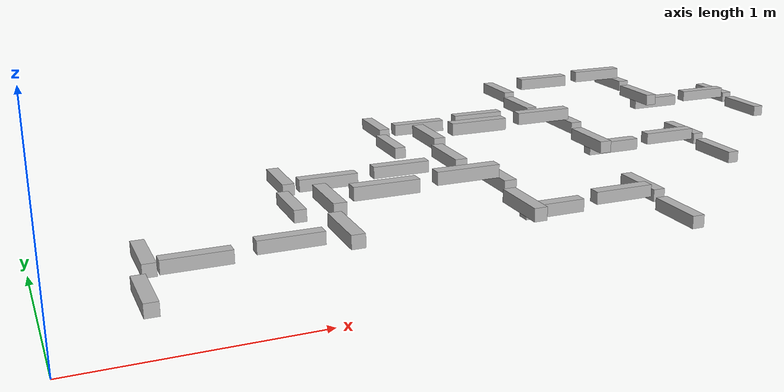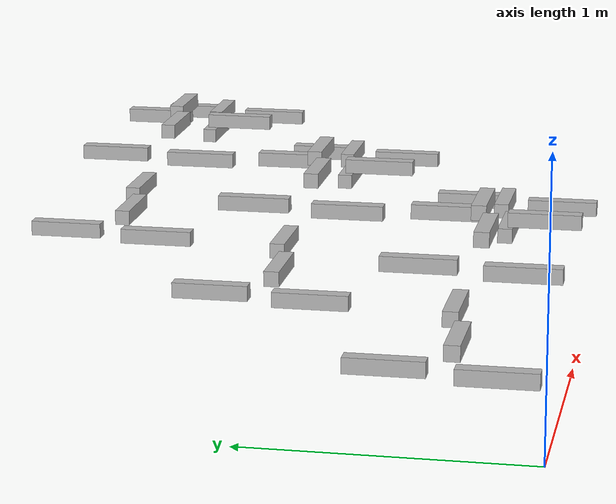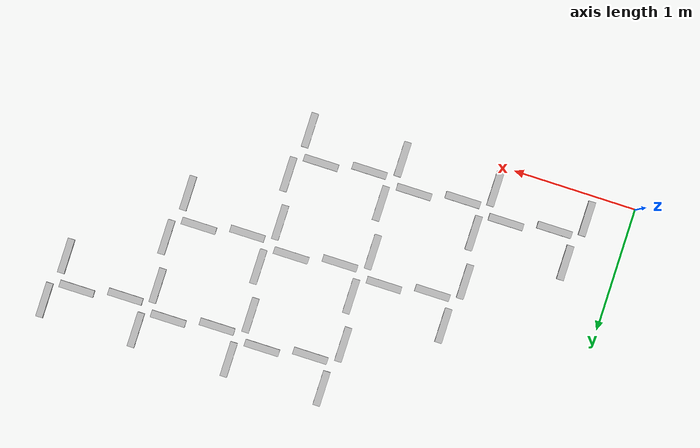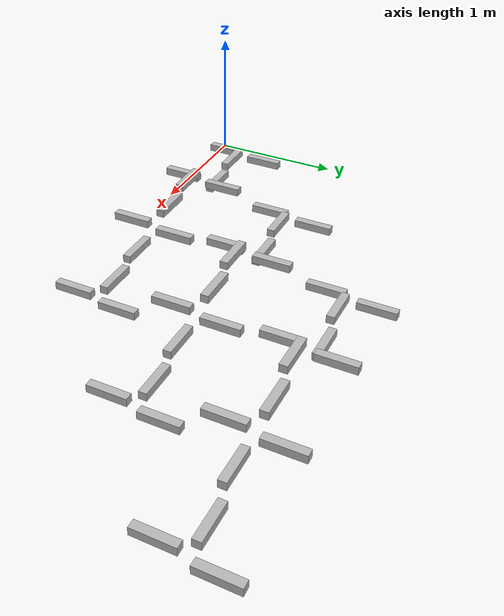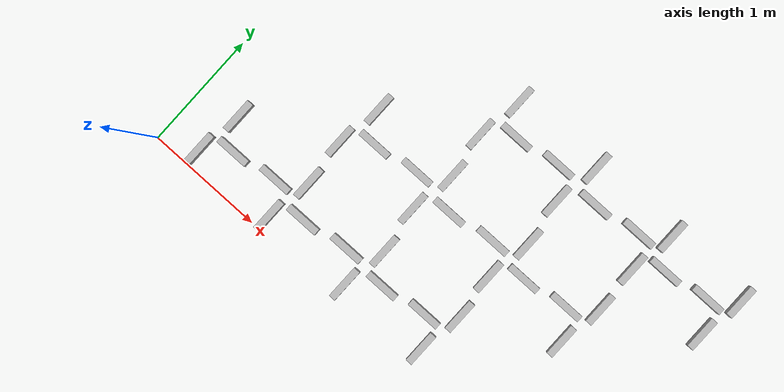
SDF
<?xml version="1.0" ?>
<sdf version="1.4">

  <model name="block_angle_steps">
    <pose>0 0 0 0 0 0</pose>

          <link name="block_0_0" >
            <pose> 0.19 0.19 0.092075 0 0 0 </pose>
            <inertial>
		<pose> 0.1615197161299224 0 0.07451778387007757 0 0 1.570796 </pose>
                <!-- approximate as uniform box 0.387 x 0.387 x 0.092 m -->
		<mass>20.0</mass>
                <inertia>
		  <ixx>0.010815020924269343</ixx>
		  <ixy>0.0000</ixy>
		  <iyy>0.13607417712880138</iyy>
		  <ixz>0.0000</ixz>
		  <iyz>0.0000</iyz>
		  <izz>0.13607417712880138</izz>
		</inertia>
	     </inertial>
             <visual name="visual">
		<pose>0.1615197161299224 0 0.07451778387007757 0 0 1.570796</pose>
		<geometry>
		  <box>
		    <size> 0.28 0.05696056774015514 0.05696056774015514 </size>
		  </box>
		</geometry>
	      </visual>

	      <collision name="block_collision">
	       <pose> 0.1615197161299224 0 0.07451778387007757 0 0 1.570796</pose>
		<geometry>
		  <box>
		    <size> 0.28 0.05696056774015514 0.05696056774015514 </size>
		  </box>
		</geometry>
		<surface>
		  <contact>
		    <ode>
		      <max_vel>0.1</max_vel>
		      <min_depth>0.001</min_depth>
		    </ode>
		  </contact>
		  <friction>
		    <ode>
		      <mu>1.0</mu>
		      <mu2>1.0</mu2>
		    </ode>
		  </friction>
		</surface>

	      </collision>
          </link>

          <link name="block_0_1" >
            <pose> 0.5700000000000001 0.5700000000000001 0.092075 0 0 0 </pose>
            <inertial>
		<pose> -0.1615197161299224 0 0.07451778387007757 0 0 1.570796 </pose>
                <!-- approximate as uniform box 0.387 x 0.387 x 0.092 m -->
		<mass>20.0</mass>
                <inertia>
		  <ixx>0.010815020924269343</ixx>
		  <ixy>0.0000</ixy>
		  <iyy>0.13607417712880138</iyy>
		  <ixz>0.0000</ixz>
		  <iyz>0.0000</iyz>
		  <izz>0.13607417712880138</izz>
		</inertia>
	     </inertial>
             <visual name="visual">
		<pose>-0.1615197161299224 0 0.07451778387007757 0 0 1.570796</pose>
		<geometry>
		  <box>
		    <size> 0.28 0.05696056774015514 0.05696056774015514 </size>
		  </box>
		</geometry>
	      </visual>

	      <collision name="block_collision">
	       <pose> -0.1615197161299224 0 0.07451778387007757 0 0 1.570796</pose>
		<geometry>
		  <box>
		    <size> 0.28 0.05696056774015514 0.05696056774015514 </size>
		  </box>
		</geometry>
		<surface>
		  <contact>
		    <ode>
		      <max_vel>0.1</max_vel>
		      <min_depth>0.001</min_depth>
		    </ode>
		  </contact>
		  <friction>
		    <ode>
		      <mu>1.0</mu>
		      <mu2>1.0</mu2>
		    </ode>
		  </friction>
		</surface>

	      </collision>
          </link>

          <link name="block_0_2" >
            <pose> 0.95 0.95 0.092075 0 0 0 </pose>
            <inertial>
		<pose> 0.1615197161299224 0 0.07451778387007757 0 0 1.570796 </pose>
                <!-- approximate as uniform box 0.387 x 0.387 x 0.092 m -->
		<mass>20.0</mass>
                <inertia>
		  <ixx>0.010815020924269343</ixx>
		  <ixy>0.0000</ixy>
		  <iyy>0.13607417712880138</iyy>
		  <ixz>0.0000</ixz>
		  <iyz>0.0000</iyz>
		  <izz>0.13607417712880138</izz>
		</inertia>
	     </inertial>
             <visual name="visual">
		<pose>0.1615197161299224 0 0.07451778387007757 0 0 1.570796</pose>
		<geometry>
		  <box>
		    <size> 0.28 0.05696056774015514 0.05696056774015514 </size>
		  </box>
		</geometry>
	      </visual>

	      <collision name="block_collision">
	       <pose> 0.1615197161299224 0 0.07451778387007757 0 0 1.570796</pose>
		<geometry>
		  <box>
		    <size> 0.28 0.05696056774015514 0.05696056774015514 </size>
		  </box>
		</geometry>
		<surface>
		  <contact>
		    <ode>
		      <max_vel>0.1</max_vel>
		      <min_depth>0.001</min_depth>
		    </ode>
		  </contact>
		  <friction>
		    <ode>
		      <mu>1.0</mu>
		      <mu2>1.0</mu2>
		    </ode>
		  </friction>
		</surface>

	      </collision>
          </link>

          <link name="block_0_3" >
            <pose> 1.33 1.33 0.092075 0 0 0 </pose>
            <inertial>
		<pose> -0.1615197161299224 0 0.07451778387007757 0 0 1.570796 </pose>
                <!-- approximate as uniform box 0.387 x 0.387 x 0.092 m -->
		<mass>20.0</mass>
                <inertia>
		  <ixx>0.010815020924269343</ixx>
		  <ixy>0.0000</ixy>
		  <iyy>0.13607417712880138</iyy>
		  <ixz>0.0000</ixz>
		  <iyz>0.0000</iyz>
		  <izz>0.13607417712880138</izz>
		</inertia>
	     </inertial>
             <visual name="visual">
		<pose>-0.1615197161299224 0 0.07451778387007757 0 0 1.570796</pose>
		<geometry>
		  <box>
		    <size> 0.28 0.05696056774015514 0.05696056774015514 </size>
		  </box>
		</geometry>
	      </visual>

	      <collision name="block_collision">
	       <pose> -0.1615197161299224 0 0.07451778387007757 0 0 1.570796</pose>
		<geometry>
		  <box>
		    <size> 0.28 0.05696056774015514 0.05696056774015514 </size>
		  </box>
		</geometry>
		<surface>
		  <contact>
		    <ode>
		      <max_vel>0.1</max_vel>
		      <min_depth>0.001</min_depth>
		    </ode>
		  </contact>
		  <friction>
		    <ode>
		      <mu>1.0</mu>
		      <mu2>1.0</mu2>
		    </ode>
		  </friction>
		</surface>

	      </collision>
          </link>

          <link name="block_0_4" >
            <pose> 1.71 1.71 0.092075 0 0 0 </pose>
            <inertial>
		<pose> 0.1615197161299224 0 0.07451778387007757 0 0 1.570796 </pose>
                <!-- approximate as uniform box 0.387 x 0.387 x 0.092 m -->
		<mass>20.0</mass>
                <inertia>
		  <ixx>0.010815020924269343</ixx>
		  <ixy>0.0000</ixy>
		  <iyy>0.13607417712880138</iyy>
		  <ixz>0.0000</ixz>
		  <iyz>0.0000</iyz>
		  <izz>0.13607417712880138</izz>
		</inertia>
	     </inertial>
             <visual name="visual">
		<pose>0.1615197161299224 0 0.07451778387007757 0 0 1.570796</pose>
		<geometry>
		  <box>
		    <size> 0.28 0.05696056774015514 0.05696056774015514 </size>
		  </box>
		</geometry>
	      </visual>

	      <collision name="block_collision">
	       <pose> 0.1615197161299224 0 0.07451778387007757 0 0 1.570796</pose>
		<geometry>
		  <box>
		    <size> 0.28 0.05696056774015514 0.05696056774015514 </size>
		  </box>
		</geometry>
		<surface>
		  <contact>
		    <ode>
		      <max_vel>0.1</max_vel>
		      <min_depth>0.001</min_depth>
		    </ode>
		  </contact>
		  <friction>
		    <ode>
		      <mu>1.0</mu>
		      <mu2>1.0</mu2>
		    </ode>
		  </friction>
		</surface>

	      </collision>
          </link>

          <link name="block_0_5" >
            <pose> 2.09 2.09 0.092075 0 0 0 </pose>
            <inertial>
		<pose> -0.1615197161299224 0 0.07451778387007757 0 0 1.570796 </pose>
                <!-- approximate as uniform box 0.387 x 0.387 x 0.092 m -->
		<mass>20.0</mass>
                <inertia>
		  <ixx>0.010815020924269343</ixx>
		  <ixy>0.0000</ixy>
		  <iyy>0.13607417712880138</iyy>
		  <ixz>0.0000</ixz>
		  <iyz>0.0000</iyz>
		  <izz>0.13607417712880138</izz>
		</inertia>
	     </inertial>
             <visual name="visual">
		<pose>-0.1615197161299224 0 0.07451778387007757 0 0 1.570796</pose>
		<geometry>
		  <box>
		    <size> 0.28 0.05696056774015514 0.05696056774015514 </size>
		  </box>
		</geometry>
	      </visual>

	      <collision name="block_collision">
	       <pose> -0.1615197161299224 0 0.07451778387007757 0 0 1.570796</pose>
		<geometry>
		  <box>
		    <size> 0.28 0.05696056774015514 0.05696056774015514 </size>
		  </box>
		</geometry>
		<surface>
		  <contact>
		    <ode>
		      <max_vel>0.1</max_vel>
		      <min_depth>0.001</min_depth>
		    </ode>
		  </contact>
		  <friction>
		    <ode>
		      <mu>1.0</mu>
		      <mu2>1.0</mu2>
		    </ode>
		  </friction>
		</surface>

	      </collision>
          </link>

          <link name="block_1_0" >
            <pose> 0.5700000000000001 0.19 0.1381125 0 0 0 </pose>
            <inertial>
		<pose> 0 0.1615197161299224 0.07451778387007757 0 0 0 </pose>
                <!-- approximate as uniform box 0.387 x 0.387 x 0.092 m -->
		<mass>20.0</mass>
                <inertia>
		  <ixx>0.010815020924269343</ixx>
		  <ixy>0.0000</ixy>
		  <iyy>0.13607417712880138</iyy>
		  <ixz>0.0000</ixz>
		  <iyz>0.0000</iyz>
		  <izz>0.13607417712880138</izz>
		</inertia>
	     </inertial>
             <visual name="visual">
		<pose>0 0.1615197161299224 0.07451778387007757 0 0 0</pose>
		<geometry>
		  <box>
		    <size> 0.28 0.05696056774015514 0.05696056774015514 </size>
		  </box>
		</geometry>
	      </visual>

	      <collision name="block_collision">
	       <pose> 0 0.1615197161299224 0.07451778387007757 0 0 0</pose>
		<geometry>
		  <box>
		    <size> 0.28 0.05696056774015514 0.05696056774015514 </size>
		  </box>
		</geometry>
		<surface>
		  <contact>
		    <ode>
		      <max_vel>0.1</max_vel>
		      <min_depth>0.001</min_depth>
		    </ode>
		  </contact>
		  <friction>
		    <ode>
		      <mu>1.0</mu>
		      <mu2>1.0</mu2>
		    </ode>
		  </friction>
		</surface>

	      </collision>
          </link>

          <link name="block_1_1" >
            <pose> 0.9500000000000001 0.5700000000000001 0.1381125 0 0 0 </pose>
            <inertial>
		<pose> 0 -0.1615197161299224 0.07451778387007757 0 0 0 </pose>
                <!-- approximate as uniform box 0.387 x 0.387 x 0.092 m -->
		<mass>20.0</mass>
                <inertia>
		  <ixx>0.010815020924269343</ixx>
		  <ixy>0.0000</ixy>
		  <iyy>0.13607417712880138</iyy>
		  <ixz>0.0000</ixz>
		  <iyz>0.0000</iyz>
		  <izz>0.13607417712880138</izz>
		</inertia>
	     </inertial>
             <visual name="visual">
		<pose>0 -0.1615197161299224 0.07451778387007757 0 0 0</pose>
		<geometry>
		  <box>
		    <size> 0.28 0.05696056774015514 0.05696056774015514 </size>
		  </box>
		</geometry>
	      </visual>

	      <collision name="block_collision">
	       <pose> 0 -0.1615197161299224 0.07451778387007757 0 0 0</pose>
		<geometry>
		  <box>
		    <size> 0.28 0.05696056774015514 0.05696056774015514 </size>
		  </box>
		</geometry>
		<surface>
		  <contact>
		    <ode>
		      <max_vel>0.1</max_vel>
		      <min_depth>0.001</min_depth>
		    </ode>
		  </contact>
		  <friction>
		    <ode>
		      <mu>1.0</mu>
		      <mu2>1.0</mu2>
		    </ode>
		  </friction>
		</surface>

	      </collision>
          </link>

          <link name="block_1_2" >
            <pose> 1.33 0.95 0.1381125 0 0 0 </pose>
            <inertial>
		<pose> 0 0.1615197161299224 0.07451778387007757 0 0 0 </pose>
                <!-- approximate as uniform box 0.387 x 0.387 x 0.092 m -->
		<mass>20.0</mass>
                <inertia>
		  <ixx>0.010815020924269343</ixx>
		  <ixy>0.0000</ixy>
		  <iyy>0.13607417712880138</iyy>
		  <ixz>0.0000</ixz>
		  <iyz>0.0000</iyz>
		  <izz>0.13607417712880138</izz>
		</inertia>
	     </inertial>
             <visual name="visual">
		<pose>0 0.1615197161299224 0.07451778387007757 0 0 0</pose>
		<geometry>
		  <box>
		    <size> 0.28 0.05696056774015514 0.05696056774015514 </size>
		  </box>
		</geometry>
	      </visual>

	      <collision name="block_collision">
	       <pose> 0 0.1615197161299224 0.07451778387007757 0 0 0</pose>
		<geometry>
		  <box>
		    <size> 0.28 0.05696056774015514 0.05696056774015514 </size>
		  </box>
		</geometry>
		<surface>
		  <contact>
		    <ode>
		      <max_vel>0.1</max_vel>
		      <min_depth>0.001</min_depth>
		    </ode>
		  </contact>
		  <friction>
		    <ode>
		      <mu>1.0</mu>
		      <mu2>1.0</mu2>
		    </ode>
		  </friction>
		</surface>

	      </collision>
          </link>

          <link name="block_1_3" >
            <pose> 1.7100000000000002 1.33 0.1381125 0 0 0 </pose>
            <inertial>
		<pose> 0 -0.1615197161299224 0.07451778387007757 0 0 0 </pose>
                <!-- approximate as uniform box 0.387 x 0.387 x 0.092 m -->
		<mass>20.0</mass>
                <inertia>
		  <ixx>0.010815020924269343</ixx>
		  <ixy>0.0000</ixy>
		  <iyy>0.13607417712880138</iyy>
		  <ixz>0.0000</ixz>
		  <iyz>0.0000</iyz>
		  <izz>0.13607417712880138</izz>
		</inertia>
	     </inertial>
             <visual name="visual">
		<pose>0 -0.1615197161299224 0.07451778387007757 0 0 0</pose>
		<geometry>
		  <box>
		    <size> 0.28 0.05696056774015514 0.05696056774015514 </size>
		  </box>
		</geometry>
	      </visual>

	      <collision name="block_collision">
	       <pose> 0 -0.1615197161299224 0.07451778387007757 0 0 0</pose>
		<geometry>
		  <box>
		    <size> 0.28 0.05696056774015514 0.05696056774015514 </size>
		  </box>
		</geometry>
		<surface>
		  <contact>
		    <ode>
		      <max_vel>0.1</max_vel>
		      <min_depth>0.001</min_depth>
		    </ode>
		  </contact>
		  <friction>
		    <ode>
		      <mu>1.0</mu>
		      <mu2>1.0</mu2>
		    </ode>
		  </friction>
		</surface>

	      </collision>
          </link>

          <link name="block_1_4" >
            <pose> 2.09 1.71 0.1381125 0 0 0 </pose>
            <inertial>
		<pose> 0 0.1615197161299224 0.07451778387007757 0 0 0 </pose>
                <!-- approximate as uniform box 0.387 x 0.387 x 0.092 m -->
		<mass>20.0</mass>
                <inertia>
		  <ixx>0.010815020924269343</ixx>
		  <ixy>0.0000</ixy>
		  <iyy>0.13607417712880138</iyy>
		  <ixz>0.0000</ixz>
		  <iyz>0.0000</iyz>
		  <izz>0.13607417712880138</izz>
		</inertia>
	     </inertial>
             <visual name="visual">
		<pose>0 0.1615197161299224 0.07451778387007757 0 0 0</pose>
		<geometry>
		  <box>
		    <size> 0.28 0.05696056774015514 0.05696056774015514 </size>
		  </box>
		</geometry>
	      </visual>

	      <collision name="block_collision">
	       <pose> 0 0.1615197161299224 0.07451778387007757 0 0 0</pose>
		<geometry>
		  <box>
		    <size> 0.28 0.05696056774015514 0.05696056774015514 </size>
		  </box>
		</geometry>
		<surface>
		  <contact>
		    <ode>
		      <max_vel>0.1</max_vel>
		      <min_depth>0.001</min_depth>
		    </ode>
		  </contact>
		  <friction>
		    <ode>
		      <mu>1.0</mu>
		      <mu2>1.0</mu2>
		    </ode>
		  </friction>
		</surface>

	      </collision>
          </link>

          <link name="block_1_5" >
            <pose> 2.4699999999999998 2.09 0.1381125 0 0 0 </pose>
            <inertial>
		<pose> 0 -0.1615197161299224 0.07451778387007757 0 0 0 </pose>
                <!-- approximate as uniform box 0.387 x 0.387 x 0.092 m -->
		<mass>20.0</mass>
                <inertia>
		  <ixx>0.010815020924269343</ixx>
		  <ixy>0.0000</ixy>
		  <iyy>0.13607417712880138</iyy>
		  <ixz>0.0000</ixz>
		  <iyz>0.0000</iyz>
		  <izz>0.13607417712880138</izz>
		</inertia>
	     </inertial>
             <visual name="visual">
		<pose>0 -0.1615197161299224 0.07451778387007757 0 0 0</pose>
		<geometry>
		  <box>
		    <size> 0.28 0.05696056774015514 0.05696056774015514 </size>
		  </box>
		</geometry>
	      </visual>

	      <collision name="block_collision">
	       <pose> 0 -0.1615197161299224 0.07451778387007757 0 0 0</pose>
		<geometry>
		  <box>
		    <size> 0.28 0.05696056774015514 0.05696056774015514 </size>
		  </box>
		</geometry>
		<surface>
		  <contact>
		    <ode>
		      <max_vel>0.1</max_vel>
		      <min_depth>0.001</min_depth>
		    </ode>
		  </contact>
		  <friction>
		    <ode>
		      <mu>1.0</mu>
		      <mu2>1.0</mu2>
		    </ode>
		  </friction>
		</surface>

	      </collision>
          </link>

          <link name="block_2_0" >
            <pose> 0.95 0.19 0.23018750000000002 0 0 0 </pose>
            <inertial>
		<pose> 0.1615197161299224 0 0.07451778387007757 0 0 1.570796 </pose>
                <!-- approximate as uniform box 0.387 x 0.387 x 0.092 m -->
		<mass>20.0</mass>
                <inertia>
		  <ixx>0.010815020924269343</ixx>
		  <ixy>0.0000</ixy>
		  <iyy>0.13607417712880138</iyy>
		  <ixz>0.0000</ixz>
		  <iyz>0.0000</iyz>
		  <izz>0.13607417712880138</izz>
		</inertia>
	     </inertial>
             <visual name="visual">
		<pose>0.1615197161299224 0 0.07451778387007757 0 0 1.570796</pose>
		<geometry>
		  <box>
		    <size> 0.28 0.05696056774015514 0.05696056774015514 </size>
		  </box>
		</geometry>
	      </visual>

	      <collision name="block_collision">
	       <pose> 0.1615197161299224 0 0.07451778387007757 0 0 1.570796</pose>
		<geometry>
		  <box>
		    <size> 0.28 0.05696056774015514 0.05696056774015514 </size>
		  </box>
		</geometry>
		<surface>
		  <contact>
		    <ode>
		      <max_vel>0.1</max_vel>
		      <min_depth>0.001</min_depth>
		    </ode>
		  </contact>
		  <friction>
		    <ode>
		      <mu>1.0</mu>
		      <mu2>1.0</mu2>
		    </ode>
		  </friction>
		</surface>

	      </collision>
          </link>

          <link name="block_2_1" >
            <pose> 1.33 0.5700000000000001 0.23018750000000002 0 0 0 </pose>
            <inertial>
		<pose> -0.1615197161299224 0 0.07451778387007757 0 0 1.570796 </pose>
                <!-- approximate as uniform box 0.387 x 0.387 x 0.092 m -->
		<mass>20.0</mass>
                <inertia>
		  <ixx>0.010815020924269343</ixx>
		  <ixy>0.0000</ixy>
		  <iyy>0.13607417712880138</iyy>
		  <ixz>0.0000</ixz>
		  <iyz>0.0000</iyz>
		  <izz>0.13607417712880138</izz>
		</inertia>
	     </inertial>
             <visual name="visual">
		<pose>-0.1615197161299224 0 0.07451778387007757 0 0 1.570796</pose>
		<geometry>
		  <box>
		    <size> 0.28 0.05696056774015514 0.05696056774015514 </size>
		  </box>
		</geometry>
	      </visual>

	      <collision name="block_collision">
	       <pose> -0.1615197161299224 0 0.07451778387007757 0 0 1.570796</pose>
		<geometry>
		  <box>
		    <size> 0.28 0.05696056774015514 0.05696056774015514 </size>
		  </box>
		</geometry>
		<surface>
		  <contact>
		    <ode>
		      <max_vel>0.1</max_vel>
		      <min_depth>0.001</min_depth>
		    </ode>
		  </contact>
		  <friction>
		    <ode>
		      <mu>1.0</mu>
		      <mu2>1.0</mu2>
		    </ode>
		  </friction>
		</surface>

	      </collision>
          </link>

          <link name="block_2_2" >
            <pose> 1.71 0.95 0.23018750000000002 0 0 0 </pose>
            <inertial>
		<pose> 0.1615197161299224 0 0.07451778387007757 0 0 1.570796 </pose>
                <!-- approximate as uniform box 0.387 x 0.387 x 0.092 m -->
		<mass>20.0</mass>
                <inertia>
		  <ixx>0.010815020924269343</ixx>
		  <ixy>0.0000</ixy>
		  <iyy>0.13607417712880138</iyy>
		  <ixz>0.0000</ixz>
		  <iyz>0.0000</iyz>
		  <izz>0.13607417712880138</izz>
		</inertia>
	     </inertial>
             <visual name="visual">
		<pose>0.1615197161299224 0 0.07451778387007757 0 0 1.570796</pose>
		<geometry>
		  <box>
		    <size> 0.28 0.05696056774015514 0.05696056774015514 </size>
		  </box>
		</geometry>
	      </visual>

	      <collision name="block_collision">
	       <pose> 0.1615197161299224 0 0.07451778387007757 0 0 1.570796</pose>
		<geometry>
		  <box>
		    <size> 0.28 0.05696056774015514 0.05696056774015514 </size>
		  </box>
		</geometry>
		<surface>
		  <contact>
		    <ode>
		      <max_vel>0.1</max_vel>
		      <min_depth>0.001</min_depth>
		    </ode>
		  </contact>
		  <friction>
		    <ode>
		      <mu>1.0</mu>
		      <mu2>1.0</mu2>
		    </ode>
		  </friction>
		</surface>

	      </collision>
          </link>

          <link name="block_2_3" >
            <pose> 2.09 1.33 0.23018750000000002 0 0 0 </pose>
            <inertial>
		<pose> -0.1615197161299224 0 0.07451778387007757 0 0 1.570796 </pose>
                <!-- approximate as uniform box 0.387 x 0.387 x 0.092 m -->
		<mass>20.0</mass>
                <inertia>
		  <ixx>0.010815020924269343</ixx>
		  <ixy>0.0000</ixy>
		  <iyy>0.13607417712880138</iyy>
		  <ixz>0.0000</ixz>
		  <iyz>0.0000</iyz>
		  <izz>0.13607417712880138</izz>
		</inertia>
	     </inertial>
             <visual name="visual">
		<pose>-0.1615197161299224 0 0.07451778387007757 0 0 1.570796</pose>
		<geometry>
		  <box>
		    <size> 0.28 0.05696056774015514 0.05696056774015514 </size>
		  </box>
		</geometry>
	      </visual>

	      <collision name="block_collision">
	       <pose> -0.1615197161299224 0 0.07451778387007757 0 0 1.570796</pose>
		<geometry>
		  <box>
		    <size> 0.28 0.05696056774015514 0.05696056774015514 </size>
		  </box>
		</geometry>
		<surface>
		  <contact>
		    <ode>
		      <max_vel>0.1</max_vel>
		      <min_depth>0.001</min_depth>
		    </ode>
		  </contact>
		  <friction>
		    <ode>
		      <mu>1.0</mu>
		      <mu2>1.0</mu2>
		    </ode>
		  </friction>
		</surface>

	      </collision>
          </link>

          <link name="block_2_4" >
            <pose> 2.4699999999999998 1.71 0.23018750000000002 0 0 0 </pose>
            <inertial>
		<pose> 0.1615197161299224 0 0.07451778387007757 0 0 1.570796 </pose>
                <!-- approximate as uniform box 0.387 x 0.387 x 0.092 m -->
		<mass>20.0</mass>
                <inertia>
		  <ixx>0.010815020924269343</ixx>
		  <ixy>0.0000</ixy>
		  <iyy>0.13607417712880138</iyy>
		  <ixz>0.0000</ixz>
		  <iyz>0.0000</iyz>
		  <izz>0.13607417712880138</izz>
		</inertia>
	     </inertial>
             <visual name="visual">
		<pose>0.1615197161299224 0 0.07451778387007757 0 0 1.570796</pose>
		<geometry>
		  <box>
		    <size> 0.28 0.05696056774015514 0.05696056774015514 </size>
		  </box>
		</geometry>
	      </visual>

	      <collision name="block_collision">
	       <pose> 0.1615197161299224 0 0.07451778387007757 0 0 1.570796</pose>
		<geometry>
		  <box>
		    <size> 0.28 0.05696056774015514 0.05696056774015514 </size>
		  </box>
		</geometry>
		<surface>
		  <contact>
		    <ode>
		      <max_vel>0.1</max_vel>
		      <min_depth>0.001</min_depth>
		    </ode>
		  </contact>
		  <friction>
		    <ode>
		      <mu>1.0</mu>
		      <mu2>1.0</mu2>
		    </ode>
		  </friction>
		</surface>

	      </collision>
          </link>

          <link name="block_2_5" >
            <pose> 2.8499999999999996 2.09 0.23018750000000002 0 0 0 </pose>
            <inertial>
		<pose> -0.1615197161299224 0 0.07451778387007757 0 0 1.570796 </pose>
                <!-- approximate as uniform box 0.387 x 0.387 x 0.092 m -->
		<mass>20.0</mass>
                <inertia>
		  <ixx>0.010815020924269343</ixx>
		  <ixy>0.0000</ixy>
		  <iyy>0.13607417712880138</iyy>
		  <ixz>0.0000</ixz>
		  <iyz>0.0000</iyz>
		  <izz>0.13607417712880138</izz>
		</inertia>
	     </inertial>
             <visual name="visual">
		<pose>-0.1615197161299224 0 0.07451778387007757 0 0 1.570796</pose>
		<geometry>
		  <box>
		    <size> 0.28 0.05696056774015514 0.05696056774015514 </size>
		  </box>
		</geometry>
	      </visual>

	      <collision name="block_collision">
	       <pose> -0.1615197161299224 0 0.07451778387007757 0 0 1.570796</pose>
		<geometry>
		  <box>
		    <size> 0.28 0.05696056774015514 0.05696056774015514 </size>
		  </box>
		</geometry>
		<surface>
		  <contact>
		    <ode>
		      <max_vel>0.1</max_vel>
		      <min_depth>0.001</min_depth>
		    </ode>
		  </contact>
		  <friction>
		    <ode>
		      <mu>1.0</mu>
		      <mu2>1.0</mu2>
		    </ode>
		  </friction>
		</surface>

	      </collision>
          </link>

          <link name="block_3_0" >
            <pose> 1.33 0.19 0.3222625 0 0 0 </pose>
            <inertial>
		<pose> 0 0.1615197161299224 0.07451778387007757 0 0 0 </pose>
                <!-- approximate as uniform box 0.387 x 0.387 x 0.092 m -->
		<mass>20.0</mass>
                <inertia>
		  <ixx>0.010815020924269343</ixx>
		  <ixy>0.0000</ixy>
		  <iyy>0.13607417712880138</iyy>
		  <ixz>0.0000</ixz>
		  <iyz>0.0000</iyz>
		  <izz>0.13607417712880138</izz>
		</inertia>
	     </inertial>
             <visual name="visual">
		<pose>0 0.1615197161299224 0.07451778387007757 0 0 0</pose>
		<geometry>
		  <box>
		    <size> 0.28 0.05696056774015514 0.05696056774015514 </size>
		  </box>
		</geometry>
	      </visual>

	      <collision name="block_collision">
	       <pose> 0 0.1615197161299224 0.07451778387007757 0 0 0</pose>
		<geometry>
		  <box>
		    <size> 0.28 0.05696056774015514 0.05696056774015514 </size>
		  </box>
		</geometry>
		<surface>
		  <contact>
		    <ode>
		      <max_vel>0.1</max_vel>
		      <min_depth>0.001</min_depth>
		    </ode>
		  </contact>
		  <friction>
		    <ode>
		      <mu>1.0</mu>
		      <mu2>1.0</mu2>
		    </ode>
		  </friction>
		</surface>

	      </collision>
          </link>

          <link name="block_3_1" >
            <pose> 1.71 0.5700000000000001 0.3222625 0 0 0 </pose>
            <inertial>
		<pose> 0 -0.1615197161299224 0.07451778387007757 0 0 0 </pose>
                <!-- approximate as uniform box 0.387 x 0.387 x 0.092 m -->
		<mass>20.0</mass>
                <inertia>
		  <ixx>0.010815020924269343</ixx>
		  <ixy>0.0000</ixy>
		  <iyy>0.13607417712880138</iyy>
		  <ixz>0.0000</ixz>
		  <iyz>0.0000</iyz>
		  <izz>0.13607417712880138</izz>
		</inertia>
	     </inertial>
             <visual name="visual">
		<pose>0 -0.1615197161299224 0.07451778387007757 0 0 0</pose>
		<geometry>
		  <box>
		    <size> 0.28 0.05696056774015514 0.05696056774015514 </size>
		  </box>
		</geometry>
	      </visual>

	      <collision name="block_collision">
	       <pose> 0 -0.1615197161299224 0.07451778387007757 0 0 0</pose>
		<geometry>
		  <box>
		    <size> 0.28 0.05696056774015514 0.05696056774015514 </size>
		  </box>
		</geometry>
		<surface>
		  <contact>
		    <ode>
		      <max_vel>0.1</max_vel>
		      <min_depth>0.001</min_depth>
		    </ode>
		  </contact>
		  <friction>
		    <ode>
		      <mu>1.0</mu>
		      <mu2>1.0</mu2>
		    </ode>
		  </friction>
		</surface>

	      </collision>
          </link>

          <link name="block_3_2" >
            <pose> 2.09 0.95 0.3222625 0 0 0 </pose>
            <inertial>
		<pose> 0 0.1615197161299224 0.07451778387007757 0 0 0 </pose>
                <!-- approximate as uniform box 0.387 x 0.387 x 0.092 m -->
		<mass>20.0</mass>
                <inertia>
		  <ixx>0.010815020924269343</ixx>
		  <ixy>0.0000</ixy>
		  <iyy>0.13607417712880138</iyy>
		  <ixz>0.0000</ixz>
		  <iyz>0.0000</iyz>
		  <izz>0.13607417712880138</izz>
		</inertia>
	     </inertial>
             <visual name="visual">
		<pose>0 0.1615197161299224 0.07451778387007757 0 0 0</pose>
		<geometry>
		  <box>
		    <size> 0.28 0.05696056774015514 0.05696056774015514 </size>
		  </box>
		</geometry>
	      </visual>

	      <collision name="block_collision">
	       <pose> 0 0.1615197161299224 0.07451778387007757 0 0 0</pose>
		<geometry>
		  <box>
		    <size> 0.28 0.05696056774015514 0.05696056774015514 </size>
		  </box>
		</geometry>
		<surface>
		  <contact>
		    <ode>
		      <max_vel>0.1</max_vel>
		      <min_depth>0.001</min_depth>
		    </ode>
		  </contact>
		  <friction>
		    <ode>
		      <mu>1.0</mu>
		      <mu2>1.0</mu2>
		    </ode>
		  </friction>
		</surface>

	      </collision>
          </link>

          <link name="block_3_3" >
            <pose> 2.47 1.33 0.3222625 0 0 0 </pose>
            <inertial>
		<pose> 0 -0.1615197161299224 0.07451778387007757 0 0 0 </pose>
                <!-- approximate as uniform box 0.387 x 0.387 x 0.092 m -->
		<mass>20.0</mass>
                <inertia>
		  <ixx>0.010815020924269343</ixx>
		  <ixy>0.0000</ixy>
		  <iyy>0.13607417712880138</iyy>
		  <ixz>0.0000</ixz>
		  <iyz>0.0000</iyz>
		  <izz>0.13607417712880138</izz>
		</inertia>
	     </inertial>
             <visual name="visual">
		<pose>0 -0.1615197161299224 0.07451778387007757 0 0 0</pose>
		<geometry>
		  <box>
		    <size> 0.28 0.05696056774015514 0.05696056774015514 </size>
		  </box>
		</geometry>
	      </visual>

	      <collision name="block_collision">
	       <pose> 0 -0.1615197161299224 0.07451778387007757 0 0 0</pose>
		<geometry>
		  <box>
		    <size> 0.28 0.05696056774015514 0.05696056774015514 </size>
		  </box>
		</geometry>
		<surface>
		  <contact>
		    <ode>
		      <max_vel>0.1</max_vel>
		      <min_depth>0.001</min_depth>
		    </ode>
		  </contact>
		  <friction>
		    <ode>
		      <mu>1.0</mu>
		      <mu2>1.0</mu2>
		    </ode>
		  </friction>
		</surface>

	      </collision>
          </link>

          <link name="block_3_4" >
            <pose> 2.85 1.71 0.3222625 0 0 0 </pose>
            <inertial>
		<pose> 0 0.1615197161299224 0.07451778387007757 0 0 0 </pose>
                <!-- approximate as uniform box 0.387 x 0.387 x 0.092 m -->
		<mass>20.0</mass>
                <inertia>
		  <ixx>0.010815020924269343</ixx>
		  <ixy>0.0000</ixy>
		  <iyy>0.13607417712880138</iyy>
		  <ixz>0.0000</ixz>
		  <iyz>0.0000</iyz>
		  <izz>0.13607417712880138</izz>
		</inertia>
	     </inertial>
             <visual name="visual">
		<pose>0 0.1615197161299224 0.07451778387007757 0 0 0</pose>
		<geometry>
		  <box>
		    <size> 0.28 0.05696056774015514 0.05696056774015514 </size>
		  </box>
		</geometry>
	      </visual>

	      <collision name="block_collision">
	       <pose> 0 0.1615197161299224 0.07451778387007757 0 0 0</pose>
		<geometry>
		  <box>
		    <size> 0.28 0.05696056774015514 0.05696056774015514 </size>
		  </box>
		</geometry>
		<surface>
		  <contact>
		    <ode>
		      <max_vel>0.1</max_vel>
		      <min_depth>0.001</min_depth>
		    </ode>
		  </contact>
		  <friction>
		    <ode>
		      <mu>1.0</mu>
		      <mu2>1.0</mu2>
		    </ode>
		  </friction>
		</surface>

	      </collision>
          </link>

          <link name="block_3_5" >
            <pose> 3.23 2.09 0.3222625 0 0 0 </pose>
            <inertial>
		<pose> 0 -0.1615197161299224 0.07451778387007757 0 0 0 </pose>
                <!-- approximate as uniform box 0.387 x 0.387 x 0.092 m -->
		<mass>20.0</mass>
                <inertia>
		  <ixx>0.010815020924269343</ixx>
		  <ixy>0.0000</ixy>
		  <iyy>0.13607417712880138</iyy>
		  <ixz>0.0000</ixz>
		  <iyz>0.0000</iyz>
		  <izz>0.13607417712880138</izz>
		</inertia>
	     </inertial>
             <visual name="visual">
		<pose>0 -0.1615197161299224 0.07451778387007757 0 0 0</pose>
		<geometry>
		  <box>
		    <size> 0.28 0.05696056774015514 0.05696056774015514 </size>
		  </box>
		</geometry>
	      </visual>

	      <collision name="block_collision">
	       <pose> 0 -0.1615197161299224 0.07451778387007757 0 0 0</pose>
		<geometry>
		  <box>
		    <size> 0.28 0.05696056774015514 0.05696056774015514 </size>
		  </box>
		</geometry>
		<surface>
		  <contact>
		    <ode>
		      <max_vel>0.1</max_vel>
		      <min_depth>0.001</min_depth>
		    </ode>
		  </contact>
		  <friction>
		    <ode>
		      <mu>1.0</mu>
		      <mu2>1.0</mu2>
		    </ode>
		  </friction>
		</surface>

	      </collision>
          </link>

          <link name="block_4_0" >
            <pose> 1.71 0.19 0.23018750000000002 0 0 0 </pose>
            <inertial>
		<pose> 0.1615197161299224 0 0.07451778387007757 0 0 1.570796 </pose>
                <!-- approximate as uniform box 0.387 x 0.387 x 0.092 m -->
		<mass>20.0</mass>
                <inertia>
		  <ixx>0.010815020924269343</ixx>
		  <ixy>0.0000</ixy>
		  <iyy>0.13607417712880138</iyy>
		  <ixz>0.0000</ixz>
		  <iyz>0.0000</iyz>
		  <izz>0.13607417712880138</izz>
		</inertia>
	     </inertial>
             <visual name="visual">
		<pose>0.1615197161299224 0 0.07451778387007757 0 0 1.570796</pose>
		<geometry>
		  <box>
		    <size> 0.28 0.05696056774015514 0.05696056774015514 </size>
		  </box>
		</geometry>
	      </visual>

	      <collision name="block_collision">
	       <pose> 0.1615197161299224 0 0.07451778387007757 0 0 1.570796</pose>
		<geometry>
		  <box>
		    <size> 0.28 0.05696056774015514 0.05696056774015514 </size>
		  </box>
		</geometry>
		<surface>
		  <contact>
		    <ode>
		      <max_vel>0.1</max_vel>
		      <min_depth>0.001</min_depth>
		    </ode>
		  </contact>
		  <friction>
		    <ode>
		      <mu>1.0</mu>
		      <mu2>1.0</mu2>
		    </ode>
		  </friction>
		</surface>

	      </collision>
          </link>

          <link name="block_4_1" >
            <pose> 2.09 0.5700000000000001 0.23018750000000002 0 0 0 </pose>
            <inertial>
		<pose> -0.1615197161299224 0 0.07451778387007757 0 0 1.570796 </pose>
                <!-- approximate as uniform box 0.387 x 0.387 x 0.092 m -->
		<mass>20.0</mass>
                <inertia>
		  <ixx>0.010815020924269343</ixx>
		  <ixy>0.0000</ixy>
		  <iyy>0.13607417712880138</iyy>
		  <ixz>0.0000</ixz>
		  <iyz>0.0000</iyz>
		  <izz>0.13607417712880138</izz>
		</inertia>
	     </inertial>
             <visual name="visual">
		<pose>-0.1615197161299224 0 0.07451778387007757 0 0 1.570796</pose>
		<geometry>
		  <box>
		    <size> 0.28 0.05696056774015514 0.05696056774015514 </size>
		  </box>
		</geometry>
	      </visual>

	      <collision name="block_collision">
	       <pose> -0.1615197161299224 0 0.07451778387007757 0 0 1.570796</pose>
		<geometry>
		  <box>
		    <size> 0.28 0.05696056774015514 0.05696056774015514 </size>
		  </box>
		</geometry>
		<surface>
		  <contact>
		    <ode>
		      <max_vel>0.1</max_vel>
		      <min_depth>0.001</min_depth>
		    </ode>
		  </contact>
		  <friction>
		    <ode>
		      <mu>1.0</mu>
		      <mu2>1.0</mu2>
		    </ode>
		  </friction>
		</surface>

	      </collision>
          </link>

          <link name="block_4_2" >
            <pose> 2.4699999999999998 0.95 0.23018750000000002 0 0 0 </pose>
            <inertial>
		<pose> 0.1615197161299224 0 0.07451778387007757 0 0 1.570796 </pose>
                <!-- approximate as uniform box 0.387 x 0.387 x 0.092 m -->
		<mass>20.0</mass>
                <inertia>
		  <ixx>0.010815020924269343</ixx>
		  <ixy>0.0000</ixy>
		  <iyy>0.13607417712880138</iyy>
		  <ixz>0.0000</ixz>
		  <iyz>0.0000</iyz>
		  <izz>0.13607417712880138</izz>
		</inertia>
	     </inertial>
             <visual name="visual">
		<pose>0.1615197161299224 0 0.07451778387007757 0 0 1.570796</pose>
		<geometry>
		  <box>
		    <size> 0.28 0.05696056774015514 0.05696056774015514 </size>
		  </box>
		</geometry>
	      </visual>

	      <collision name="block_collision">
	       <pose> 0.1615197161299224 0 0.07451778387007757 0 0 1.570796</pose>
		<geometry>
		  <box>
		    <size> 0.28 0.05696056774015514 0.05696056774015514 </size>
		  </box>
		</geometry>
		<surface>
		  <contact>
		    <ode>
		      <max_vel>0.1</max_vel>
		      <min_depth>0.001</min_depth>
		    </ode>
		  </contact>
		  <friction>
		    <ode>
		      <mu>1.0</mu>
		      <mu2>1.0</mu2>
		    </ode>
		  </friction>
		</surface>

	      </collision>
          </link>

          <link name="block_4_3" >
            <pose> 2.85 1.33 0.23018750000000002 0 0 0 </pose>
            <inertial>
		<pose> -0.1615197161299224 0 0.07451778387007757 0 0 1.570796 </pose>
                <!-- approximate as uniform box 0.387 x 0.387 x 0.092 m -->
		<mass>20.0</mass>
                <inertia>
		  <ixx>0.010815020924269343</ixx>
		  <ixy>0.0000</ixy>
		  <iyy>0.13607417712880138</iyy>
		  <ixz>0.0000</ixz>
		  <iyz>0.0000</iyz>
		  <izz>0.13607417712880138</izz>
		</inertia>
	     </inertial>
             <visual name="visual">
		<pose>-0.1615197161299224 0 0.07451778387007757 0 0 1.570796</pose>
		<geometry>
		  <box>
		    <size> 0.28 0.05696056774015514 0.05696056774015514 </size>
		  </box>
		</geometry>
	      </visual>

	      <collision name="block_collision">
	       <pose> -0.1615197161299224 0 0.07451778387007757 0 0 1.570796</pose>
		<geometry>
		  <box>
		    <size> 0.28 0.05696056774015514 0.05696056774015514 </size>
		  </box>
		</geometry>
		<surface>
		  <contact>
		    <ode>
		      <max_vel>0.1</max_vel>
		      <min_depth>0.001</min_depth>
		    </ode>
		  </contact>
		  <friction>
		    <ode>
		      <mu>1.0</mu>
		      <mu2>1.0</mu2>
		    </ode>
		  </friction>
		</surface>

	      </collision>
          </link>

          <link name="block_4_4" >
            <pose> 3.23 1.71 0.23018750000000002 0 0 0 </pose>
            <inertial>
		<pose> 0.1615197161299224 0 0.07451778387007757 0 0 1.570796 </pose>
                <!-- approximate as uniform box 0.387 x 0.387 x 0.092 m -->
		<mass>20.0</mass>
                <inertia>
		  <ixx>0.010815020924269343</ixx>
		  <ixy>0.0000</ixy>
		  <iyy>0.13607417712880138</iyy>
		  <ixz>0.0000</ixz>
		  <iyz>0.0000</iyz>
		  <izz>0.13607417712880138</izz>
		</inertia>
	     </inertial>
             <visual name="visual">
		<pose>0.1615197161299224 0 0.07451778387007757 0 0 1.570796</pose>
		<geometry>
		  <box>
		    <size> 0.28 0.05696056774015514 0.05696056774015514 </size>
		  </box>
		</geometry>
	      </visual>

	      <collision name="block_collision">
	       <pose> 0.1615197161299224 0 0.07451778387007757 0 0 1.570796</pose>
		<geometry>
		  <box>
		    <size> 0.28 0.05696056774015514 0.05696056774015514 </size>
		  </box>
		</geometry>
		<surface>
		  <contact>
		    <ode>
		      <max_vel>0.1</max_vel>
		      <min_depth>0.001</min_depth>
		    </ode>
		  </contact>
		  <friction>
		    <ode>
		      <mu>1.0</mu>
		      <mu2>1.0</mu2>
		    </ode>
		  </friction>
		</surface>

	      </collision>
          </link>

          <link name="block_4_5" >
            <pose> 3.61 2.09 0.23018750000000002 0 0 0 </pose>
            <inertial>
		<pose> -0.1615197161299224 0 0.07451778387007757 0 0 1.570796 </pose>
                <!-- approximate as uniform box 0.387 x 0.387 x 0.092 m -->
		<mass>20.0</mass>
                <inertia>
		  <ixx>0.010815020924269343</ixx>
		  <ixy>0.0000</ixy>
		  <iyy>0.13607417712880138</iyy>
		  <ixz>0.0000</ixz>
		  <iyz>0.0000</iyz>
		  <izz>0.13607417712880138</izz>
		</inertia>
	     </inertial>
             <visual name="visual">
		<pose>-0.1615197161299224 0 0.07451778387007757 0 0 1.570796</pose>
		<geometry>
		  <box>
		    <size> 0.28 0.05696056774015514 0.05696056774015514 </size>
		  </box>
		</geometry>
	      </visual>

	      <collision name="block_collision">
	       <pose> -0.1615197161299224 0 0.07451778387007757 0 0 1.570796</pose>
		<geometry>
		  <box>
		    <size> 0.28 0.05696056774015514 0.05696056774015514 </size>
		  </box>
		</geometry>
		<surface>
		  <contact>
		    <ode>
		      <max_vel>0.1</max_vel>
		      <min_depth>0.001</min_depth>
		    </ode>
		  </contact>
		  <friction>
		    <ode>
		      <mu>1.0</mu>
		      <mu2>1.0</mu2>
		    </ode>
		  </friction>
		</surface>

	      </collision>
          </link>

          <link name="block_5_0" >
            <pose> 2.09 0.19 0.1381125 0 0 0 </pose>
            <inertial>
		<pose> 0 0.1615197161299224 0.07451778387007757 0 0 0 </pose>
                <!-- approximate as uniform box 0.387 x 0.387 x 0.092 m -->
		<mass>20.0</mass>
                <inertia>
		  <ixx>0.010815020924269343</ixx>
		  <ixy>0.0000</ixy>
		  <iyy>0.13607417712880138</iyy>
		  <ixz>0.0000</ixz>
		  <iyz>0.0000</iyz>
		  <izz>0.13607417712880138</izz>
		</inertia>
	     </inertial>
             <visual name="visual">
		<pose>0 0.1615197161299224 0.07451778387007757 0 0 0</pose>
		<geometry>
		  <box>
		    <size> 0.28 0.05696056774015514 0.05696056774015514 </size>
		  </box>
		</geometry>
	      </visual>

	      <collision name="block_collision">
	       <pose> 0 0.1615197161299224 0.07451778387007757 0 0 0</pose>
		<geometry>
		  <box>
		    <size> 0.28 0.05696056774015514 0.05696056774015514 </size>
		  </box>
		</geometry>
		<surface>
		  <contact>
		    <ode>
		      <max_vel>0.1</max_vel>
		      <min_depth>0.001</min_depth>
		    </ode>
		  </contact>
		  <friction>
		    <ode>
		      <mu>1.0</mu>
		      <mu2>1.0</mu2>
		    </ode>
		  </friction>
		</surface>

	      </collision>
          </link>

          <link name="block_5_1" >
            <pose> 2.4699999999999998 0.5700000000000001 0.1381125 0 0 0 </pose>
            <inertial>
		<pose> 0 -0.1615197161299224 0.07451778387007757 0 0 0 </pose>
                <!-- approximate as uniform box 0.387 x 0.387 x 0.092 m -->
		<mass>20.0</mass>
                <inertia>
		  <ixx>0.010815020924269343</ixx>
		  <ixy>0.0000</ixy>
		  <iyy>0.13607417712880138</iyy>
		  <ixz>0.0000</ixz>
		  <iyz>0.0000</iyz>
		  <izz>0.13607417712880138</izz>
		</inertia>
	     </inertial>
             <visual name="visual">
		<pose>0 -0.1615197161299224 0.07451778387007757 0 0 0</pose>
		<geometry>
		  <box>
		    <size> 0.28 0.05696056774015514 0.05696056774015514 </size>
		  </box>
		</geometry>
	      </visual>

	      <collision name="block_collision">
	       <pose> 0 -0.1615197161299224 0.07451778387007757 0 0 0</pose>
		<geometry>
		  <box>
		    <size> 0.28 0.05696056774015514 0.05696056774015514 </size>
		  </box>
		</geometry>
		<surface>
		  <contact>
		    <ode>
		      <max_vel>0.1</max_vel>
		      <min_depth>0.001</min_depth>
		    </ode>
		  </contact>
		  <friction>
		    <ode>
		      <mu>1.0</mu>
		      <mu2>1.0</mu2>
		    </ode>
		  </friction>
		</surface>

	      </collision>
          </link>

          <link name="block_5_2" >
            <pose> 2.8499999999999996 0.95 0.1381125 0 0 0 </pose>
            <inertial>
		<pose> 0 0.1615197161299224 0.07451778387007757 0 0 0 </pose>
                <!-- approximate as uniform box 0.387 x 0.387 x 0.092 m -->
		<mass>20.0</mass>
                <inertia>
		  <ixx>0.010815020924269343</ixx>
		  <ixy>0.0000</ixy>
		  <iyy>0.13607417712880138</iyy>
		  <ixz>0.0000</ixz>
		  <iyz>0.0000</iyz>
		  <izz>0.13607417712880138</izz>
		</inertia>
	     </inertial>
             <visual name="visual">
		<pose>0 0.1615197161299224 0.07451778387007757 0 0 0</pose>
		<geometry>
		  <box>
		    <size> 0.28 0.05696056774015514 0.05696056774015514 </size>
		  </box>
		</geometry>
	      </visual>

	      <collision name="block_collision">
	       <pose> 0 0.1615197161299224 0.07451778387007757 0 0 0</pose>
		<geometry>
		  <box>
		    <size> 0.28 0.05696056774015514 0.05696056774015514 </size>
		  </box>
		</geometry>
		<surface>
		  <contact>
		    <ode>
		      <max_vel>0.1</max_vel>
		      <min_depth>0.001</min_depth>
		    </ode>
		  </contact>
		  <friction>
		    <ode>
		      <mu>1.0</mu>
		      <mu2>1.0</mu2>
		    </ode>
		  </friction>
		</surface>

	      </collision>
          </link>

          <link name="block_5_3" >
            <pose> 3.23 1.33 0.1381125 0 0 0 </pose>
            <inertial>
		<pose> 0 -0.1615197161299224 0.07451778387007757 0 0 0 </pose>
                <!-- approximate as uniform box 0.387 x 0.387 x 0.092 m -->
		<mass>20.0</mass>
                <inertia>
		  <ixx>0.010815020924269343</ixx>
		  <ixy>0.0000</ixy>
		  <iyy>0.13607417712880138</iyy>
		  <ixz>0.0000</ixz>
		  <iyz>0.0000</iyz>
		  <izz>0.13607417712880138</izz>
		</inertia>
	     </inertial>
             <visual name="visual">
		<pose>0 -0.1615197161299224 0.07451778387007757 0 0 0</pose>
		<geometry>
		  <box>
		    <size> 0.28 0.05696056774015514 0.05696056774015514 </size>
		  </box>
		</geometry>
	      </visual>

	      <collision name="block_collision">
	       <pose> 0 -0.1615197161299224 0.07451778387007757 0 0 0</pose>
		<geometry>
		  <box>
		    <size> 0.28 0.05696056774015514 0.05696056774015514 </size>
		  </box>
		</geometry>
		<surface>
		  <contact>
		    <ode>
		      <max_vel>0.1</max_vel>
		      <min_depth>0.001</min_depth>
		    </ode>
		  </contact>
		  <friction>
		    <ode>
		      <mu>1.0</mu>
		      <mu2>1.0</mu2>
		    </ode>
		  </friction>
		</surface>

	      </collision>
          </link>

          <link name="block_5_4" >
            <pose> 3.61 1.71 0.1381125 0 0 0 </pose>
            <inertial>
		<pose> 0 0.1615197161299224 0.07451778387007757 0 0 0 </pose>
                <!-- approximate as uniform box 0.387 x 0.387 x 0.092 m -->
		<mass>20.0</mass>
                <inertia>
		  <ixx>0.010815020924269343</ixx>
		  <ixy>0.0000</ixy>
		  <iyy>0.13607417712880138</iyy>
		  <ixz>0.0000</ixz>
		  <iyz>0.0000</iyz>
		  <izz>0.13607417712880138</izz>
		</inertia>
	     </inertial>
             <visual name="visual">
		<pose>0 0.1615197161299224 0.07451778387007757 0 0 0</pose>
		<geometry>
		  <box>
		    <size> 0.28 0.05696056774015514 0.05696056774015514 </size>
		  </box>
		</geometry>
	      </visual>

	      <collision name="block_collision">
	       <pose> 0 0.1615197161299224 0.07451778387007757 0 0 0</pose>
		<geometry>
		  <box>
		    <size> 0.28 0.05696056774015514 0.05696056774015514 </size>
		  </box>
		</geometry>
		<surface>
		  <contact>
		    <ode>
		      <max_vel>0.1</max_vel>
		      <min_depth>0.001</min_depth>
		    </ode>
		  </contact>
		  <friction>
		    <ode>
		      <mu>1.0</mu>
		      <mu2>1.0</mu2>
		    </ode>
		  </friction>
		</surface>

	      </collision>
          </link>

          <link name="block_5_5" >
            <pose> 3.9899999999999998 2.09 0.1381125 0 0 0 </pose>
            <inertial>
		<pose> 0 -0.1615197161299224 0.07451778387007757 0 0 0 </pose>
                <!-- approximate as uniform box 0.387 x 0.387 x 0.092 m -->
		<mass>20.0</mass>
                <inertia>
		  <ixx>0.010815020924269343</ixx>
		  <ixy>0.0000</ixy>
		  <iyy>0.13607417712880138</iyy>
		  <ixz>0.0000</ixz>
		  <iyz>0.0000</iyz>
		  <izz>0.13607417712880138</izz>
		</inertia>
	     </inertial>
             <visual name="visual">
		<pose>0 -0.1615197161299224 0.07451778387007757 0 0 0</pose>
		<geometry>
		  <box>
		    <size> 0.28 0.05696056774015514 0.05696056774015514 </size>
		  </box>
		</geometry>
	      </visual>

	      <collision name="block_collision">
	       <pose> 0 -0.1615197161299224 0.07451778387007757 0 0 0</pose>
		<geometry>
		  <box>
		    <size> 0.28 0.05696056774015514 0.05696056774015514 </size>
		  </box>
		</geometry>
		<surface>
		  <contact>
		    <ode>
		      <max_vel>0.1</max_vel>
		      <min_depth>0.001</min_depth>
		    </ode>
		  </contact>
		  <friction>
		    <ode>
		      <mu>1.0</mu>
		      <mu2>1.0</mu2>
		    </ode>
		  </friction>
		</surface>

	      </collision>
          </link>

          <link name="block_6_0" >
            <pose> 2.47 0.19 0.092075 0 0 0 </pose>
            <inertial>
		<pose> 0.1615197161299224 0 0.07451778387007757 0 0 1.570796 </pose>
                <!-- approximate as uniform box 0.387 x 0.387 x 0.092 m -->
		<mass>20.0</mass>
                <inertia>
		  <ixx>0.010815020924269343</ixx>
		  <ixy>0.0000</ixy>
		  <iyy>0.13607417712880138</iyy>
		  <ixz>0.0000</ixz>
		  <iyz>0.0000</iyz>
		  <izz>0.13607417712880138</izz>
		</inertia>
	     </inertial>
             <visual name="visual">
		<pose>0.1615197161299224 0 0.07451778387007757 0 0 1.570796</pose>
		<geometry>
		  <box>
		    <size> 0.28 0.05696056774015514 0.05696056774015514 </size>
		  </box>
		</geometry>
	      </visual>

	      <collision name="block_collision">
	       <pose> 0.1615197161299224 0 0.07451778387007757 0 0 1.570796</pose>
		<geometry>
		  <box>
		    <size> 0.28 0.05696056774015514 0.05696056774015514 </size>
		  </box>
		</geometry>
		<surface>
		  <contact>
		    <ode>
		      <max_vel>0.1</max_vel>
		      <min_depth>0.001</min_depth>
		    </ode>
		  </contact>
		  <friction>
		    <ode>
		      <mu>1.0</mu>
		      <mu2>1.0</mu2>
		    </ode>
		  </friction>
		</surface>

	      </collision>
          </link>

          <link name="block_6_1" >
            <pose> 2.85 0.5700000000000001 0.092075 0 0 0 </pose>
            <inertial>
		<pose> -0.1615197161299224 0 0.07451778387007757 0 0 1.570796 </pose>
                <!-- approximate as uniform box 0.387 x 0.387 x 0.092 m -->
		<mass>20.0</mass>
                <inertia>
		  <ixx>0.010815020924269343</ixx>
		  <ixy>0.0000</ixy>
		  <iyy>0.13607417712880138</iyy>
		  <ixz>0.0000</ixz>
		  <iyz>0.0000</iyz>
		  <izz>0.13607417712880138</izz>
		</inertia>
	     </inertial>
             <visual name="visual">
		<pose>-0.1615197161299224 0 0.07451778387007757 0 0 1.570796</pose>
		<geometry>
		  <box>
		    <size> 0.28 0.05696056774015514 0.05696056774015514 </size>
		  </box>
		</geometry>
	      </visual>

	      <collision name="block_collision">
	       <pose> -0.1615197161299224 0 0.07451778387007757 0 0 1.570796</pose>
		<geometry>
		  <box>
		    <size> 0.28 0.05696056774015514 0.05696056774015514 </size>
		  </box>
		</geometry>
		<surface>
		  <contact>
		    <ode>
		      <max_vel>0.1</max_vel>
		      <min_depth>0.001</min_depth>
		    </ode>
		  </contact>
		  <friction>
		    <ode>
		      <mu>1.0</mu>
		      <mu2>1.0</mu2>
		    </ode>
		  </friction>
		</surface>

	      </collision>
          </link>

          <link name="block_6_2" >
            <pose> 3.2300000000000004 0.95 0.092075 0 0 0 </pose>
            <inertial>
		<pose> 0.1615197161299224 0 0.07451778387007757 0 0 1.570796 </pose>
                <!-- approximate as uniform box 0.387 x 0.387 x 0.092 m -->
		<mass>20.0</mass>
                <inertia>
		  <ixx>0.010815020924269343</ixx>
		  <ixy>0.0000</ixy>
		  <iyy>0.13607417712880138</iyy>
		  <ixz>0.0000</ixz>
		  <iyz>0.0000</iyz>
		  <izz>0.13607417712880138</izz>
		</inertia>
	     </inertial>
             <visual name="visual">
		<pose>0.1615197161299224 0 0.07451778387007757 0 0 1.570796</pose>
		<geometry>
		  <box>
		    <size> 0.28 0.05696056774015514 0.05696056774015514 </size>
		  </box>
		</geometry>
	      </visual>

	      <collision name="block_collision">
	       <pose> 0.1615197161299224 0 0.07451778387007757 0 0 1.570796</pose>
		<geometry>
		  <box>
		    <size> 0.28 0.05696056774015514 0.05696056774015514 </size>
		  </box>
		</geometry>
		<surface>
		  <contact>
		    <ode>
		      <max_vel>0.1</max_vel>
		      <min_depth>0.001</min_depth>
		    </ode>
		  </contact>
		  <friction>
		    <ode>
		      <mu>1.0</mu>
		      <mu2>1.0</mu2>
		    </ode>
		  </friction>
		</surface>

	      </collision>
          </link>

          <link name="block_6_3" >
            <pose> 3.6100000000000003 1.33 0.092075 0 0 0 </pose>
            <inertial>
		<pose> -0.1615197161299224 0 0.07451778387007757 0 0 1.570796 </pose>
                <!-- approximate as uniform box 0.387 x 0.387 x 0.092 m -->
		<mass>20.0</mass>
                <inertia>
		  <ixx>0.010815020924269343</ixx>
		  <ixy>0.0000</ixy>
		  <iyy>0.13607417712880138</iyy>
		  <ixz>0.0000</ixz>
		  <iyz>0.0000</iyz>
		  <izz>0.13607417712880138</izz>
		</inertia>
	     </inertial>
             <visual name="visual">
		<pose>-0.1615197161299224 0 0.07451778387007757 0 0 1.570796</pose>
		<geometry>
		  <box>
		    <size> 0.28 0.05696056774015514 0.05696056774015514 </size>
		  </box>
		</geometry>
	      </visual>

	      <collision name="block_collision">
	       <pose> -0.1615197161299224 0 0.07451778387007757 0 0 1.570796</pose>
		<geometry>
		  <box>
		    <size> 0.28 0.05696056774015514 0.05696056774015514 </size>
		  </box>
		</geometry>
		<surface>
		  <contact>
		    <ode>
		      <max_vel>0.1</max_vel>
		      <min_depth>0.001</min_depth>
		    </ode>
		  </contact>
		  <friction>
		    <ode>
		      <mu>1.0</mu>
		      <mu2>1.0</mu2>
		    </ode>
		  </friction>
		</surface>

	      </collision>
          </link>

          <link name="block_6_4" >
            <pose> 3.99 1.71 0.092075 0 0 0 </pose>
            <inertial>
		<pose> 0.1615197161299224 0 0.07451778387007757 0 0 1.570796 </pose>
                <!-- approximate as uniform box 0.387 x 0.387 x 0.092 m -->
		<mass>20.0</mass>
                <inertia>
		  <ixx>0.010815020924269343</ixx>
		  <ixy>0.0000</ixy>
		  <iyy>0.13607417712880138</iyy>
		  <ixz>0.0000</ixz>
		  <iyz>0.0000</iyz>
		  <izz>0.13607417712880138</izz>
		</inertia>
	     </inertial>
             <visual name="visual">
		<pose>0.1615197161299224 0 0.07451778387007757 0 0 1.570796</pose>
		<geometry>
		  <box>
		    <size> 0.28 0.05696056774015514 0.05696056774015514 </size>
		  </box>
		</geometry>
	      </visual>

	      <collision name="block_collision">
	       <pose> 0.1615197161299224 0 0.07451778387007757 0 0 1.570796</pose>
		<geometry>
		  <box>
		    <size> 0.28 0.05696056774015514 0.05696056774015514 </size>
		  </box>
		</geometry>
		<surface>
		  <contact>
		    <ode>
		      <max_vel>0.1</max_vel>
		      <min_depth>0.001</min_depth>
		    </ode>
		  </contact>
		  <friction>
		    <ode>
		      <mu>1.0</mu>
		      <mu2>1.0</mu2>
		    </ode>
		  </friction>
		</surface>

	      </collision>
          </link>

          <link name="block_6_5" >
            <pose> 4.37 2.09 0.092075 0 0 0 </pose>
            <inertial>
		<pose> -0.1615197161299224 0 0.07451778387007757 0 0 1.570796 </pose>
                <!-- approximate as uniform box 0.387 x 0.387 x 0.092 m -->
		<mass>20.0</mass>
                <inertia>
		  <ixx>0.010815020924269343</ixx>
		  <ixy>0.0000</ixy>
		  <iyy>0.13607417712880138</iyy>
		  <ixz>0.0000</ixz>
		  <iyz>0.0000</iyz>
		  <izz>0.13607417712880138</izz>
		</inertia>
	     </inertial>
             <visual name="visual">
		<pose>-0.1615197161299224 0 0.07451778387007757 0 0 1.570796</pose>
		<geometry>
		  <box>
		    <size> 0.28 0.05696056774015514 0.05696056774015514 </size>
		  </box>
		</geometry>
	      </visual>

	      <collision name="block_collision">
	       <pose> -0.1615197161299224 0 0.07451778387007757 0 0 1.570796</pose>
		<geometry>
		  <box>
		    <size> 0.28 0.05696056774015514 0.05696056774015514 </size>
		  </box>
		</geometry>
		<surface>
		  <contact>
		    <ode>
		      <max_vel>0.1</max_vel>
		      <min_depth>0.001</min_depth>
		    </ode>
		  </contact>
		  <friction>
		    <ode>
		      <mu>1.0</mu>
		      <mu2>1.0</mu2>
		    </ode>
		  </friction>
		</surface>

	      </collision>
          </link>

  </model>

</sdf>
